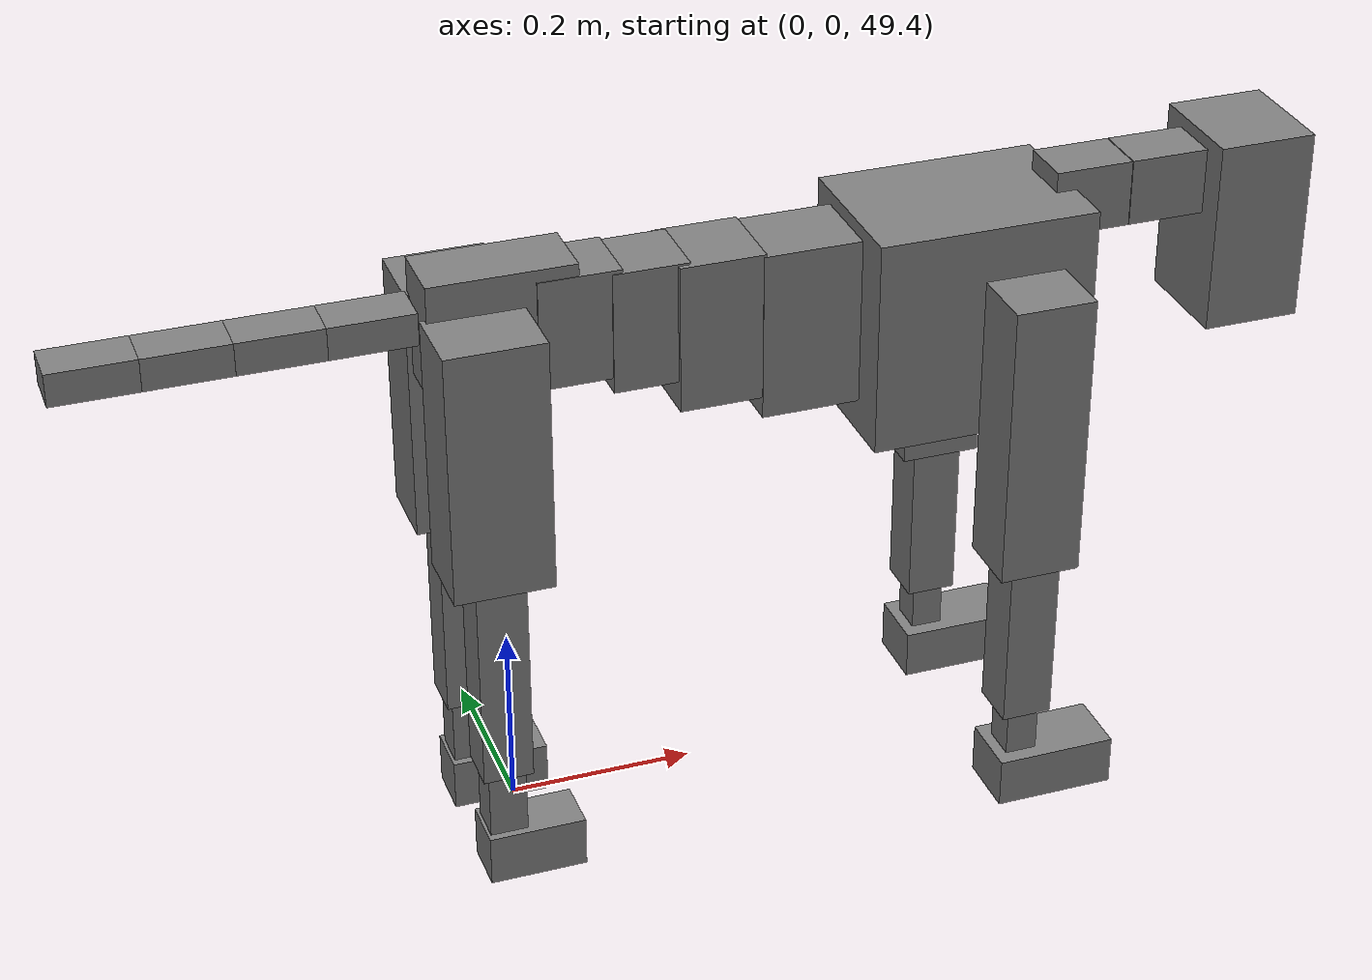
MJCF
<mujoco model="dog">

    <default>
        <joint armature="0.02" stiffness="1" damping="0.2" limited="true"/>
        <geom condim="3" friction="1 0.05 0.05" margin="0.01"/>
        <motor ctrllimited="true" ctrlrange="-1.0 1.0" forcelimited="true" gear="50"/>
    </default>

    <compiler inertiafromgeom="true" angle="radian"/>

    <option timestep="0.016" iterations="50" tolerance="1e-10" solver="Newton" jacobian="dense" cone="pyramidal"/>

    <size nconmax="20000" njmax="60000" nstack="5000000"/>
    <visual>
        <map force="0.1" zfar="30"/>
        <rgba haze="0.15 0.25 0.35 1"/>
        <quality shadowsize="2048"/>
        <global offwidth="800" offheight="800"/>
    </visual>

    <asset>
        <texture type="skybox" builtin="gradient" rgb1="0.3 0.5 0.7" rgb2="0 0 0" width="512" height="512"/>
        <texture name="texplane" type="2d" builtin="checker" rgb1=".2 .3 .4" rgb2=".1 0.15 0.2" width="512" height="512"
                 mark="cross" markrgb=".8 .8 .8"/>
        <texture name="texgeom" type="cube" builtin="flat" mark="cross" width="127" height="1278" rgb1="0.8 0.6 0.4"
                 rgb2="0.8 0.6 0.4" markrgb="1 1 1" random="0.01"/>

        <material name="matplane" reflectance="0.3" texture="texplane" texrepeat="1 1" texuniform="true"/>
        <material name="matgeom" texture="texgeom" texuniform="true" rgba="0.8 0.6 .4 1"/>
    </asset>

    <worldbody>
        <geom name="floor" pos="0 0 0" size="0 0 .25" type="plane" material="matplane" condim="3"/>

        <light directional="false" diffuse=".2 .2 .2" specular="0 0 0" pos="0 0 5" dir="0 0 -1" castshadow="false"/>
        <light mode="targetbodycom" target="torso" directional="false" diffuse=".8 .8 .8" specular="0.3 0.3 0.3"
               pos="0 0 4.0" dir="0 0 -1"/>

        <body name="root" pos="0 0 50">
            <freejoint name="root_1"/>
            <geom type="box" pos="0 0 -0.02" size="0.0774  0.0358  0.063" density="2030"/>

            <body name="spine1" pos="0.054 0 0">
                <joint name="spine1_y" axis="0 1 0" range="0 0.7" limited="true"/>
                <geom type="box" pos="0.02375 0 -0.03" size="0.04375  0.0375  0.05985" density="2030"/>

                <body name="spine2" pos="0.0612 0 0">
                    <joint name="spine2_y" axis="0 1 0" range="-0.15 0.15" limited="true"/>
                    <geom type="box" pos="0.03555  0  -0.04" size="0.04055  0.039  0.06615" density="2030"/>

                    <body name="spine3" pos="0.0730 0 0">
                        <joint name="spine3_y" axis="0 1 0" range="-0.15 0.15" limited="true"/>
                        <geom type="box" pos="0.03555  0  -0.057" size="0.04555  0.0445  0.081" density="2030"/>

                        <body name="spine4" pos="0.0780 0 0">
                            <joint name="spine4_y" axis="0 1 0" range="-0.15 0.15" limited="true"/>
                            <geom type="box" pos="0.05265  0  -0.07" size="0.05265  0.045  0.09135" density="2030"/>

                            <body name="torso" pos="0.1082 0 0">
                                <joint name="torso_y" axis="0 1 0" range="-0.15 0.15" limited="true"/>
                                <geom type="box" pos="0.11925  0  -0.085" size="0.11925  0.085  0.11745"
                                      density="2030"/>

                                <body name="neck1" pos="0.2160  0   0.0180">
                                    <joint name="neck1_y" axis="0 1 0" range="-1.2  -1" limited="true"/>
                                    <geom type="box" pos="0.0423  0  0" size="0.0423  0.03  0.036" density="2325"/>

                                    <body name="neck2" pos="0.0853  0  0">
                                        <joint name="neck2_y" axis="0 1 0" range="0.1  0" limited="true"/>
                                        <geom type="box" pos="0.0423  0  0" size="0.0423  0.03  0.036" density="2325"/>

                                        <body name="head" pos="0.0853  0  0">
                                            <joint name="head_y" axis="0 1 0" range="-0.3  -0.2" limited="true"/>
                                            <geom type="box" pos="0.0531  0  -0.055" size="0.0531  0.06  0.1044"
                                                  density="4030"/>

                                        </body>
                                    </body>
                                </body>

                                <body name="front_shoulder" pos="0.156  0   -0.0480">
                                    <joint name="front_shoulder_y" axis="0 1 0" range="-1 1.5" limited="true"/>
                                    <geom type="box" pos="0 0.13 -0.1306" size="0.0436  0.0373  0.1572" density="1158"/>
                                    <geom type="box" pos="0 -0.13 -0.1306" size="0.0436  0.0373  0.1572"
                                          density="1158"/>

                                    <body name="front_elbow" pos="0  0  -0.2611">
                                        <joint name="front_elbow_y" axis="0 1 0" range="-2 0" limited="true"/>
                                        <geom type="box" pos="0 0.13 -0.1058" size="0.0272  0.0278  0.1058"
                                              density="1081"/>
                                        <geom type="box" pos="0 -0.13 -0.1058" size="0.0272  0.0278  0.1058"
                                              density="1081"/>

                                        <body name="front_wrist" pos="0  0  -0.2116">
                                            <joint name="front_wrist_y" axis="0 1 0" range="-0.2 0" limited="true"/>
                                            <geom type="box" pos="0 0.13 -0.0334" size="0.0173  0.0192  0.0466"
                                                  density="1664"/>
                                            <geom type="box" pos="0 -0.13 -0.0334" size="0.0173  0.0192  0.0466"
                                                  density="1664"/>

                                            <body name="front_finger_end" pos="0  0  -0.0668">
                                                <joint name="front_finger_y" axis="0 1 0" range="-0.4 1"
                                                       limited="true"/>
                                                <geom type="box" pos="0.0357  0.13  -0.0123"
                                                      size="0.0654  0.0357  0.0273" density="1515"/>
                                                <geom type="box" pos="0.0357  -0.13  -0.0123"
                                                      size="0.0654  0.0357  0.0273" density="1515"/>

                                            </body>

                                        </body>
                                    </body>
                                </body>

                            </body>
                        </body>
                    </body>
                </body>
            </body>

            <body name="back_hip" pos="-0.03 0 -0.018">
                <joint name="back_hip_y" axis="0 1 0" range="-1.5 0.3" limited="true"/>
                <geom type="box" pos="0 0.07 -0.1158" size="0.0528  0.0414  0.1386" density="1154"/>
                <geom type="box" pos="0 -0.07 -0.1158" size="0.0528  0.0414  0.1386" density="1154"/>

                <body name="back_knee" pos="0  0  -0.2316">
                    <joint name="back_knee_y" axis="0 1 0" range="0 2.8" limited="true"/>
                    <geom type="box" pos="0 0.07 -0.1215" size="0.0267  0.0264  0.1370" density="1227"/>
                    <geom type="box" pos="0 -0.07 -0.1215" size="0.0267  0.0264  0.1370" density="1227"/>

                    <body name="back_ankle" pos="0  0  -0.2430">
                        <joint name="back_ankle_y" axis="0 1 0" range="-2.2 0" limited="true"/>
                        <geom type="box" pos="0 0.07 -0.0518" size="0.0203  0.0203  0.0630" density="1284"/>
                        <geom type="box" pos="0 -0.07 -0.0518" size="0.0203  0.0203  0.0630" density="1284"/>

                        <body name="back_toe_end" pos="0  0  -0.1035">
                            <joint name="back_toe_y" axis="0 1 0" range="-0.4 1" limited="true"/>
                            <geom type="box" pos="0.0287  0.07  -0.0132" size="0.0525  0.0287  0.0282" density="1515"/>
                            <geom type="box" pos="0.0287  -0.07  -0.0132" size="0.0525  0.0287  0.0282" density="1515"/>

                        </body>
                    </body>
                </body>
            </body>

            <body name="tail1" pos="-0.074 0 -0.006">
                <joint name="tail1_y" axis="0 1 0" range="-0.2 0.2" limited="true"/>
                <geom type="box" pos="-0.0536  0  0" size="0.045  0.025  0.0175" density="1587"/>

                <body name="tail2" pos="-0.09 0 0">
                    <joint name="tail2_y" axis="0 1 0" range="-0.2 0.2" limited="true"/>
                    <geom type="box" pos="-0.0536  0  0" size="0.045  0.025  0.0175" density="1587"/>

                    <body name="tail3" pos="-0.09 0 0">
                        <joint name="tail3_y" axis="0 1 0" range="-0.2 0.2" limited="true"/>
                        <geom type="box" pos="-0.0536  0  0" size="0.045  0.025  0.0175" density="1587"/>

                        <body name="tail4" pos="-0.09 0 0">
                            <joint name="tail4_y" axis="0 1 0" range="-0.2 0.2" limited="true"/>
                            <geom type="box" pos="-0.0536  0  0" size="0.045  0.025  0.0175" density="1587"/>

                        </body>
                    </body>
                </body>
            </body>
        </body>
    </worldbody>

    <actuator>
        <motor joint="spine1_y" forcerange="-150 150     "/>
        <motor joint="spine2_y" forcerange="-150 150     "/>
        <motor joint="spine3_y" forcerange="-150 150     "/>
        <motor joint="spine4_y" forcerange="-150 150     "/>
        <motor joint="torso_y" forcerange="-150 150     "/>
        <motor joint="neck1_y" forcerange="-100 100       "/>
        <motor joint="neck2_y" forcerange="-100 100       "/>
        <motor joint="head_y" forcerange="-150 150       "/>
        <motor joint="front_shoulder_y" forcerange="-173.57 174.87"/>
        <motor joint="front_elbow_y" forcerange="-168.53 133.68"/>
        <motor joint="front_wrist_y" forcerange="-80.00 73.82"/>
        <motor joint="front_finger_y" forcerange="-57.22 92.95"/>
        <motor joint="back_hip_y" forcerange="-399.54 352.90"/>
        <motor joint="back_knee_y" forcerange="-300.47 283.01"/>
        <motor joint="back_angle_y" forcerange="-70.39 155.11"/>
        <motor joint="back_toe_y" forcerange="-75.62 73.65"/>
        <motor joint="tail1_y" forcerange="-50 50     "/>
        <motor joint="tail2_y" forcerange="-50 50     "/>
        <motor joint="tail3_y" forcerange="-50 50     "/>
        <motor joint="tail4_y" forcerange="-50 50     "/>
    </actuator>
</mujoco>
